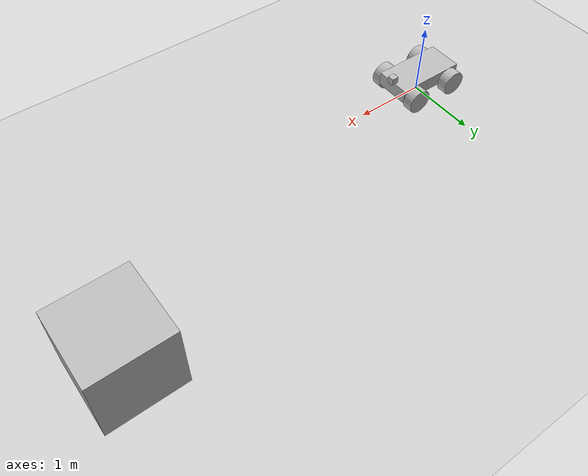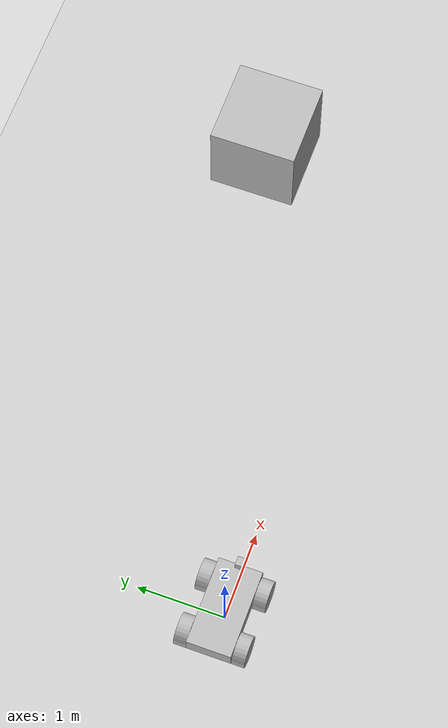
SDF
<sdf version="1.6">
 <world name="collision_world">
  <model name="ground_plane">
   <static>1</static>
   <link name="link">
    <collision name="collision">
     <geometry><plane><normal>0 0 1</normal><size>100 100</size></plane></geometry>
     <surface><friction><ode><mu>100</mu><mu2>50</mu2></ode></friction></surface>
    </collision>
    <visual name="visual">
     <cast_shadows>0</cast_shadows>
     <geometry><plane><normal>0 0 1</normal><size>100 100</size></plane></geometry>
     <material>
      <script><uri>file://media/materials/scripts/gazebo.material</uri><name>Gazebo/Grey</name></script>
     </material>
    </visual>
   </link>
  </model>
  <light name="sun" type="directional">
   <pose>0 0 10 0 -0 0</pose>
   <diffuse>0.8 0.8 0.8 1</diffuse>
   <specular>0.1 0.1 0.1 1</specular>
   <attenuation>
    <range>1000</range>
    <constant>0.9</constant>
    <linear>0.01</linear>
    <quadratic>0.001</quadratic>
   </attenuation>
   <direction>-0.5 0.5 -1</direction>
  </light>
  <model name="collision_model">
   <pose>0 0 7e-06 0 -0 0</pose>
   <static>0</static>
   <link name="chassis">
    <pose>0 0 0.25 0 -0 0</pose>
    <visual name="chassis_visual"><geometry><box><size>1 0.5 0.2</size></box></geometry></visual>
    <collision name="chassis_collision"><geometry><box><size>1 0.5 0.2</size></box></geometry></collision>
    <inertial>
     <inertia><ixx>1</ixx><ixy>0</ixy><ixz>0</ixz><iyy>1</iyy><iyz>0</iyz><izz>1</izz></inertia>
     <mass>1</mass>
    </inertial>
   </link>
   <link name="left_wheel">
    <pose>0.325 0.325 0.175 1.5707 -0 0</pose>
    <visual name="left_wheel_visual">
     <geometry><cylinder><radius>0.175</radius><length>0.145</length></cylinder></geometry>
    </visual>
    <collision name="left_wheel_collision">
     <geometry><cylinder><radius>0.175</radius><length>0.145</length></cylinder></geometry>
    </collision>
    <inertial>
     <inertia><ixx>1</ixx><ixy>0</ixy><ixz>0</ixz><iyy>1</iyy><iyz>0</iyz><izz>1</izz></inertia>
     <mass>1</mass>
    </inertial>
   </link>
   <link name="right_wheel">
    <pose>0.325 -0.325 0.175 1.5707 -0 0</pose>
    <visual name="right_wheel_visual">
     <geometry><cylinder><radius>0.175</radius><length>0.145</length></cylinder></geometry>
    </visual>
    <collision name="right_wheel_collision">
     <geometry><cylinder><radius>0.175</radius><length>0.145</length></cylinder></geometry>
    </collision>
    <inertial>
     <inertia><ixx>1</ixx><ixy>0</ixy><ixz>0</ixz><iyy>1</iyy><iyz>0</iyz><izz>1</izz></inertia>
     <mass>1</mass>
    </inertial>
   </link>
   <link name="second_left_wheel">
    <pose>-0.325 0.325 0.175 1.5707 -0 0</pose>
    <visual name="second_left_wheel_visual">
     <geometry><cylinder><radius>0.175</radius><length>0.145</length></cylinder></geometry>
    </visual>
    <collision name="second_left_wheel_collision">
     <geometry><cylinder><radius>0.175</radius><length>0.145</length></cylinder></geometry>
    </collision>
    <inertial>
     <inertia><ixx>1</ixx><ixy>0</ixy><ixz>0</ixz><iyy>1</iyy><iyz>0</iyz><izz>1</izz></inertia>
     <mass>1</mass>
    </inertial>
   </link>
   <link name="second_right_wheel">
    <pose>-0.325 -0.325 0.175 1.5707 -0 0</pose>
    <visual name="second_right_wheel_visual">
     <geometry><cylinder><radius>0.175</radius><length>0.145</length></cylinder></geometry>
    </visual>
    <collision name="second_right_wheel_collision">
     <geometry><cylinder><radius>0.175</radius><length>0.145</length></cylinder></geometry>
    </collision>
    <inertial>
     <inertia><ixx>1</ixx><ixy>0</ixy><ixz>0</ixz><iyy>1</iyy><iyz>0</iyz><izz>1</izz></inertia>
     <mass>1</mass>
    </inertial>
   </link>
   <model name="sensor_box">
    <link name="sensor_link">
     <pose>0.5 0 0.4 0 -0 0</pose>
     <collision name="sensor_box_collision"><geometry><box><size>0.1 0.1 0.1</size></box></geometry></collision>
     <visual name="sensor_box_visual"><geometry><box><size>0.1 0.1 0.1</size></box></geometry></visual>
     <sensor name="my_contact" type="contact">
      <contact><collision>sensor_box_collision</collision><topic>__default_topic__</topic></contact>
     </sensor>
     <inertial>
      <inertia><ixx>1</ixx><ixy>0</ixy><ixz>0</ixz><iyy>1</iyy><iyz>0</iyz><izz>1</izz></inertia>
      <mass>1</mass>
     </inertial>
    </link>
    <plugin name="RecieverPlugin" filename="libmyRecieverPlugin.so"/>
   </model>
   <joint name="left_wheel_hinge" type="revolute">
    <child>left_wheel</child>
    <parent>chassis</parent>
    <axis>
     <xyz>0 0 1</xyz>
     <use_parent_model_frame>0</use_parent_model_frame>
     <limit><lower>-1e+16</lower><upper>1e+16</upper></limit>
     <dynamics><spring_reference>0</spring_reference><spring_stiffness>0</spring_stiffness></dynamics>
    </axis>
   </joint>
   <joint name="right_wheel_hinge" type="revolute">
    <child>right_wheel</child>
    <parent>chassis</parent>
    <axis>
     <xyz>0 0 1</xyz>
     <use_parent_model_frame>0</use_parent_model_frame>
     <limit><lower>-1e+16</lower><upper>1e+16</upper></limit>
     <dynamics><spring_reference>0</spring_reference><spring_stiffness>0</spring_stiffness></dynamics>
    </axis>
   </joint>
   <joint name="second_left_wheel_hinge" type="revolute">
    <child>second_left_wheel</child>
    <parent>chassis</parent>
    <axis>
     <xyz>0 0 1</xyz>
     <use_parent_model_frame>0</use_parent_model_frame>
     <limit><lower>-1e+16</lower><upper>1e+16</upper></limit>
     <dynamics><spring_reference>0</spring_reference><spring_stiffness>0</spring_stiffness></dynamics>
    </axis>
   </joint>
   <joint name="second_right_wheel_hinge" type="revolute">
    <child>second_right_wheel</child>
    <parent>chassis</parent>
    <axis>
     <xyz>0 0 1</xyz>
     <use_parent_model_frame>0</use_parent_model_frame>
     <limit><lower>-1e+16</lower><upper>1e+16</upper></limit>
     <dynamics><spring_reference>0</spring_reference><spring_stiffness>0</spring_stiffness></dynamics>
    </axis>
   </joint>
   <joint name="collision_sensor_joint" type="fixed">
    <child>sensor_box::sensor_link</child>
    <parent>chassis</parent>
   </joint>
   <plugin name="myMotorPlugin" filename="libmyMotorPlugin.so"/>
   <plugin name="postbox1Plugin" filename="libpostbox1Plugin.so"/>
   <plugin name="postbox2Plugin" filename="libpostbox2Plugin.so"/>
  </model>
  <model name="box">
   <pose>-0.5 1.5 0 0 -0 0</pose>
   <static>1</static>
   <link name="link">
    <pose>6 0 0.5 0 -0 0</pose>
    <collision name="box_collision"><geometry><box><size>1 1 1</size></box></geometry></collision>
    <visual name="visual"><geometry><box><size>1 1 1</size></box></geometry></visual>
   </link>
  </model>
  <gravity>0 0 -9.8</gravity>
  <magnetic_field>6e-06 2.3e-05 -4.2e-05</magnetic_field>
  <atmosphere type="adiabatic"/>
  <physics name="default_physics" default="0" type="ode">
   <max_step_size>0.001</max_step_size>
   <real_time_factor>1</real_time_factor>
   <real_time_update_rate>1000</real_time_update_rate>
  </physics>
  <scene><ambient>0.4 0.4 0.4 1</ambient><background>0.7 0.7 0.7 1</background><shadows>1</shadows></scene>
  <spherical_coordinates>
   <surface_model>EARTH_WGS84</surface_model>
   <latitude_deg>0</latitude_deg>
   <longitude_deg>0</longitude_deg>
   <elevation>0</elevation>
   <heading_deg>0</heading_deg>
  </spherical_coordinates>
 </world>
</sdf>
